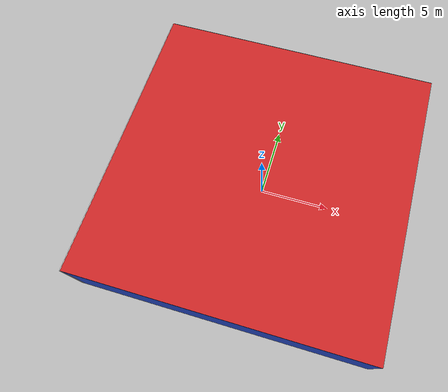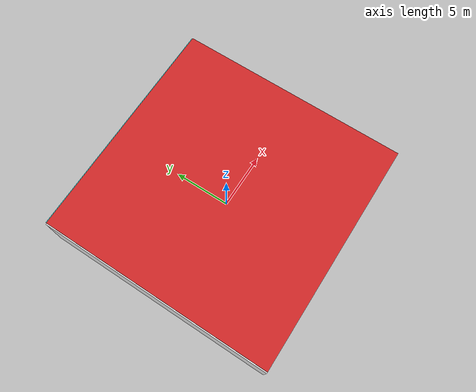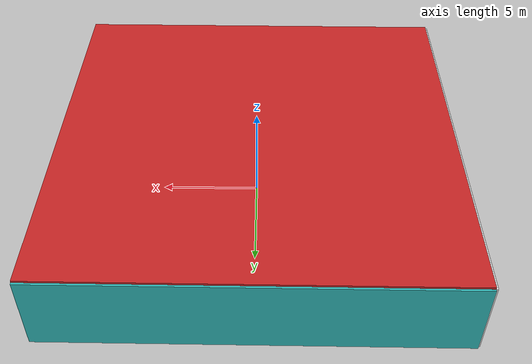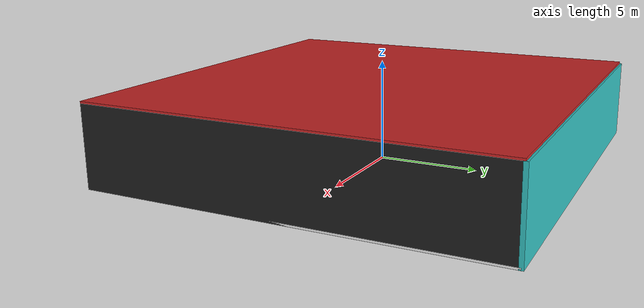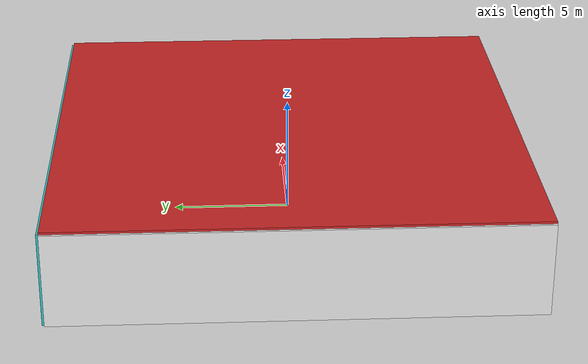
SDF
<sdf version="1.4">
 <world name="default">
  <physics type="ode">
   <max_step_size>0.001</max_step_size>
   <real_time_factor>1</real_time_factor>
   <real_time_update_rate>1000</real_time_update_rate>
   <gravity>0 0 -9.8</gravity>
  </physics>
  <scene><ambient>0.4 0.4 0.4 1</ambient><background>0.7 0.7 0.7 1</background><shadows>1</shadows></scene>
  <model name="Surrounding">
   <static>1</static>
   <link name="Ceiling">
    <collision name="Ceiling_Collision"><geometry><box><size>20 20 0.1</size></box></geometry></collision>
    <visual name="Ceiling_Visual">
     <geometry><box><size>20 20 0.1</size></box></geometry>
     <material>
      <script><uri>file://media/materials/scripts/gazebo.material</uri><name>Gazebo/RedGlow</name></script>
     </material>
    </visual>
    <pose>0 0 4.05 0 0 0</pose>
   </link>
   <link name="Wall_South">
    <collision name="Wall_South_Collision">
     <geometry><box><size>20 0 4</size></box></geometry>
     <pose>0 0 2 0 -0 0</pose>
    </collision>
    <visual name="Wall_South_Visual">
     <pose>0 0 2 0 -0 0</pose>
     <geometry><box><size>20 0 4</size></box></geometry>
     <material>
      <script><uri>file://media/materials/scripts/gazebo.material</uri><name>Gazebo/Blue</name></script>
     </material>
    </visual>
    <velocity_decay><linear>0</linear><angular>0</angular></velocity_decay>
    <pose>0 -10 0 0 -0 0</pose>
   </link>
   <link name="Wall_East">
    <collision name="Wall_21_Collision">
     <geometry><box><size>20 0 4</size></box></geometry>
     <pose>0 0 2 0 -0 0</pose>
    </collision>
    <visual name="Wall_21_Visual">
     <pose>0 0 2 0 -0 0</pose>
     <geometry><box><size>20 0 4</size></box></geometry>
     <material>
      <script><uri>file://media/materials/scripts/gazebo.material</uri><name>Gazebo/FlatBlack</name></script>
     </material>
    </visual>
    <velocity_decay><linear>0</linear><angular>0</angular></velocity_decay>
    <pose>10 0 0 0 -0 1.5708</pose>
   </link>
   <link name="Wall_North">
    <collision name="Wall_22_Collision">
     <geometry><box><size>20 0.2 4</size></box></geometry>
     <pose>0 0 2 0 -0 0</pose>
    </collision>
    <visual name="Wall_22_Visual">
     <pose>0 0 2 0 -0 0</pose>
     <geometry><box><size>20 0.2 4</size></box></geometry>
     <material>
      <script>
       <uri>file://media/materials/scripts/gazebo.material</uri>
       <name>Gazebo/TurquoiseGlowOutline</name>
      </script>
     </material>
    </visual>
    <velocity_decay><linear>0</linear><angular>0</angular></velocity_decay>
    <pose>0 10 0 0 -0 0</pose>
   </link>
   <link name="Wall_West">
    <collision name="Wall_23_Collision">
     <geometry><box><size>20 0.2 4</size></box></geometry>
     <pose>0 0 2 0 -0 0</pose>
    </collision>
    <visual name="Wall_23_Visual">
     <pose>0 0 2 0 -0 0</pose>
     <geometry><box><size>20 0.2 4</size></box></geometry>
     <material>
      <script><uri>file://media/materials/scripts/gazebo.material</uri><name>Gazebo/White</name></script>
     </material>
    </visual>
    <velocity_decay><linear>0</linear><angular>0</angular></velocity_decay>
    <pose>-10 0 0 0 0 -1.5708</pose>
   </link>
   <link name="Ground_link">
    <collision name="collision">
     <pose>0 0 .05 0 -0 0</pose>
     <geometry><box><size>20 20 0.1</size></box></geometry>
    </collision>
    <visual name="visual">
     <pose>0 0 .05 0 -0 0</pose>
     <geometry><box><size>20 20 0.1</size></box></geometry>
     <material>
      <script><uri>file://media/materials/scripts/gazebo.material</uri><name>Gazebo/White</name></script>
     </material>
    </visual>
   </link>
   <static>1</static>
  </model>
  <spherical_coordinates>
   <surface_model>EARTH_WGS84</surface_model>
   <latitude_deg>0</latitude_deg>
   <longitude_deg>0</longitude_deg>
   <elevation>0</elevation>
   <heading_deg>0</heading_deg>
  </spherical_coordinates>
  <light name="lightball_0" type="diffuse">
   <diffuse>0.8 0.8 0.8 1</diffuse>
   <specular>0.2 0.2 0.2 1</specular>
   <attenuation>
    <range>100</range>
    <constant>0.7</constant>
    <linear>0.01</linear>
    <quadratic>0.001</quadratic>
   </attenuation>
   <direction>-0.5 0.1 -0.9</direction>
   <pose>5.1468683548 9.35584634316 2.37061166328 0 0 0</pose>
  </light>
  <light name="lightball_1" type="diffuse">
   <diffuse>0.8 0.8 0.8 1</diffuse>
   <specular>0.2 0.2 0.2 1</specular>
   <attenuation>
    <range>100</range>
    <constant>0.7</constant>
    <linear>0.01</linear>
    <quadratic>0.001</quadratic>
   </attenuation>
   <direction>-0.5 0.1 -0.9</direction>
   <pose>5.82091603903 -4.47267984547 2.41115849062 0 0 0</pose>
  </light>
  <light name="lightball_2" type="diffuse">
   <diffuse>0.8 0.8 0.8 1</diffuse>
   <specular>0.2 0.2 0.2 1</specular>
   <attenuation>
    <range>100</range>
    <constant>0.7</constant>
    <linear>0.01</linear>
    <quadratic>0.001</quadratic>
   </attenuation>
   <direction>-0.5 0.1 -0.9</direction>
   <pose>1.48640027263 6.12233686169 2.26456767985 0 0 0</pose>
  </light>
  <light name="lightball_3" type="diffuse">
   <diffuse>0.8 0.8 0.8 1</diffuse>
   <specular>0.2 0.2 0.2 1</specular>
   <attenuation>
    <range>100</range>
    <constant>0.7</constant>
    <linear>0.01</linear>
    <quadratic>0.001</quadratic>
   </attenuation>
   <direction>-0.5 0.1 -0.9</direction>
   <pose>4.91992262851 -7.30494637902 2.63553896343 0 0 0</pose>
  </light>
  <light name="lightball_4" type="diffuse">
   <diffuse>0.8 0.8 0.8 1</diffuse>
   <specular>0.2 0.2 0.2 1</specular>
   <attenuation>
    <range>100</range>
    <constant>0.7</constant>
    <linear>0.01</linear>
    <quadratic>0.001</quadratic>
   </attenuation>
   <direction>-0.5 0.1 -0.9</direction>
   <pose>2.67320137204 -0.822824268402 2.06505304028 0 0 0</pose>
  </light>
  <light name="lightball_5" type="diffuse">
   <diffuse>0.8 0.8 0.8 1</diffuse>
   <specular>0.2 0.2 0.2 1</specular>
   <attenuation>
    <range>100</range>
    <constant>0.7</constant>
    <linear>0.01</linear>
    <quadratic>0.001</quadratic>
   </attenuation>
   <direction>-0.5 0.1 -0.9</direction>
   <pose>2.87053979219 -1.85624529405 3.31569823578 0 0 0</pose>
  </light>
  <light name="lightball_6" type="diffuse">
   <diffuse>0.8 0.8 0.8 1</diffuse>
   <specular>0.2 0.2 0.2 1</specular>
   <attenuation>
    <range>100</range>
    <constant>0.7</constant>
    <linear>0.01</linear>
    <quadratic>0.001</quadratic>
   </attenuation>
   <direction>-0.5 0.1 -0.9</direction>
   <pose>2.89593343042 8.85878605166 0.621306064024 0 0 0</pose>
  </light>
  <light name="lightball_7" type="diffuse">
   <diffuse>0.8 0.8 0.8 1</diffuse>
   <specular>0.2 0.2 0.2 1</specular>
   <attenuation>
    <range>100</range>
    <constant>0.7</constant>
    <linear>0.01</linear>
    <quadratic>0.001</quadratic>
   </attenuation>
   <direction>-0.5 0.1 -0.9</direction>
   <pose>-6.72962792223 2.08203354649 2.64055672581 0 0 0</pose>
  </light>
  <light name="lightball_8" type="diffuse">
   <diffuse>0.8 0.8 0.8 1</diffuse>
   <specular>0.2 0.2 0.2 1</specular>
   <attenuation>
    <range>100</range>
    <constant>0.7</constant>
    <linear>0.01</linear>
    <quadratic>0.001</quadratic>
   </attenuation>
   <direction>-0.5 0.1 -0.9</direction>
   <pose>6.76347229475 -3.86063458649 2.41252119459 0 0 0</pose>
  </light>
  <light name="lightball_9" type="diffuse">
   <diffuse>0.8 0.8 0.8 1</diffuse>
   <specular>0.2 0.2 0.2 1</specular>
   <attenuation>
    <range>100</range>
    <constant>0.7</constant>
    <linear>0.01</linear>
    <quadratic>0.001</quadratic>
   </attenuation>
   <direction>-0.5 0.1 -0.9</direction>
   <pose>-8.38292174293 -5.30413233965 2.77494357377 0 0 0</pose>
  </light>
  <light name="lightball_10" type="diffuse">
   <diffuse>0.8 0.8 0.8 1</diffuse>
   <specular>0.2 0.2 0.2 1</specular>
   <attenuation>
    <range>100</range>
    <constant>0.7</constant>
    <linear>0.01</linear>
    <quadratic>0.001</quadratic>
   </attenuation>
   <direction>-0.5 0.1 -0.9</direction>
   <pose>-9.29774390028 9.57017286251 3.55480045484 0 0 0</pose>
  </light>
  <light name="lightball_11" type="diffuse">
   <diffuse>0.8 0.8 0.8 1</diffuse>
   <specular>0.2 0.2 0.2 1</specular>
   <attenuation>
    <range>100</range>
    <constant>0.7</constant>
    <linear>0.01</linear>
    <quadratic>0.001</quadratic>
   </attenuation>
   <direction>-0.5 0.1 -0.9</direction>
   <pose>-7.13420375948 -3.31301407901 1.66811466723 0 0 0</pose>
  </light>
  <include>
   <uri>model://textured_shapes</uri>
   <pose>-6.52844626857 4.62432465736 0 0 0 2.50049556733</pose>
  </include>
  <include><uri>model://cabinet</uri><pose>1.84209486386 -7.84933491467 0 0 0 0.120973389298</pose></include>
  <include><uri>model://cabinet</uri><pose>2.18168399616 -2.41614898724 0 0 0 0.663758695971</pose></include>
  <include>
   <uri>model://construction_cone</uri>
   <pose>0.383689824633 4.97216955583 0 0 0 2.296514852</pose>
  </include>
 </world>
</sdf>

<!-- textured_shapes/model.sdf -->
<sdf version="1.6">
  <model name="textured_shapes">
    <pose>0 0 0.5 0 0 0</pose>
    <link name="box">
      <pose>0 -1.5 0 0 0 0</pose>
      <collision name="collision">
        <geometry>
          <box>
            <size>1 1 1</size>
          </box>
        </geometry>
      </collision>
      <visual name="visual">
        <geometry>
          <box>
            <size>1 1 1</size>
          </box>
        </geometry>
        <material>
          <script>
            <uri>model://../model_source/models/textured_shapes/materials/scripts</uri>
            <uri>model://../model_source/models/textured_shapes/materials/textures</uri>
            <name>TexturedShape/Squares</name>
          </script>
        </material>
      </visual>
    </link>
    <link name="sphere">
      <collision name="collision">
        <geometry>
          <sphere>
            <radius>0.5</radius>
          </sphere>
        </geometry>
      </collision>
      <visual name="visual">
        <geometry>
          <sphere>
            <radius>0.5</radius>
          </sphere>
        </geometry>
        <material>
          <script>
            <uri>model://../model_source/models/textured_shapes/materials/scripts</uri>
            <uri>model://../model_source/models/textured_shapes/materials/textures</uri>
            <name>TexturedShape/Squares</name>
          </script>
        </material>
      </visual>
    </link>
    <link name="cylinder">
      <pose>0 1.5 0 0 0 0</pose>
      <collision name="collision">
        <geometry>
          <cylinder>
            <radius>0.5</radius>
            <length>1</length>
          </cylinder>
        </geometry>
      </collision>
      <visual name="visual">
        <geometry>
          <cylinder>
            <radius>0.5</radius>
            <length>1</length>
          </cylinder>
        </geometry>
        <material>
          <script>
            <uri>model://../model_source/models/textured_shapes/materials/scripts</uri>
            <uri>model://../model_source/models/textured_shapes/materials/textures</uri>
            <name>TexturedShape/Squares</name>
          </script>
        </material>
      </visual>
    </link>
  </model>
</sdf>

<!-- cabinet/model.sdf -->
<sdf version="1.5">
  <model name="cabinet">
    <static>true</static>
    <link name="cabinet_bottom_plate">
      <inertial>
        <pose>0 0 -1 0 0 0</pose>
        <inertia>
          <ixx>2.050000</ixx>
          <ixy>0</ixy>
          <ixz>0</ixz>
          <iyy>2.050000</iyy>
          <iyz>0</iyz>
          <izz>2.050000</izz>
        </inertia>
        <mass>25.000000</mass>
      </inertial>
      <collision name="cabinet_bottom_plate_geom">
        <pose>0 0 0.010000 0 0 0</pose>
        <geometry>
          <box>
            <size>0.450000 0.450000 0.020000</size>
          </box>
        </geometry>
      </collision>
      <visual name="cabinet_bottom_plate_geom_visual">
        <pose>0 0 0.010000 0 0 0</pose>
        <geometry>
          <box>
            <size>0.450000 0.450000 0.020000</size>
          </box>
        </geometry>
        <material>
          <script>
            <uri>model://media/materials/scripts/gazebo.material</uri>
            <name>Gazebo/Wood</name>
          </script>
        </material>
      </visual>
      <collision name="cabinet_bottom_plate_geom_cabinet_back_plate">
        <pose>0.235000 0 0.510000 0 0 0</pose>
        <geometry>
          <box>
            <size>0.020000 0.450000 1.020000</size>
          </box>
        </geometry>
      </collision>
      <visual name="cabinet_bottom_plate_geom_cabinet_back_plate_visual">
        <pose>0.235000 0 0.510000 0 0 0</pose>
        <geometry>
          <box>
            <size>0.020000 0.450000 1.020000</size>
          </box>
        </geometry>
        <material>
          <script>
            <uri>model://media/materials/scripts/gazebo.material</uri>
            <name>Gazebo/Wood</name>
          </script>
        </material>
      </visual>
      <collision name="cabinet_bottom_plate_geom_cabinet_left_plate">
        <pose>0 0.235000 0.510000 0 0 0</pose>
        <geometry>
          <box>
            <size>0.450000 0.020000 1.020000</size>
          </box>
        </geometry>
      </collision>
      <visual name="cabinet_bottom_plate_geom_cabinet_left_plate_visual">
        <pose>0 0.235000 0.510000 0 0 0</pose>
        <geometry>
          <box>
            <size>0.450000 0.020000 1.020000</size>
          </box>
        </geometry>
        <material>
          <script>
            <uri>model://media/materials/scripts/gazebo.material</uri>
            <name>Gazebo/Wood</name>
          </script>
        </material>
      </visual>
      <collision name="cabinet_bottom_plate_geom_cabinet_middle_plate">
        <pose>0 0 0.510000 0 0 0</pose>
        <geometry>
          <box>
            <size>0.450000 0.450000 0.020000</size>
          </box>
        </geometry>
      </collision>
      <visual name="cabinet_bottom_plate_geom_cabinet_middle_plate_visual">
        <pose>0 0 0.510000 0 0 0</pose>
        <geometry>
          <box>
            <size>0.450000 0.450000 0.020000</size>
          </box>
        </geometry>
        <material>
          <script>
            <uri>model://media/materials/scripts/gazebo.material</uri>
            <name>Gazebo/Wood</name>
          </script>
        </material>
      </visual>
      <collision name="cabinet_bottom_plate_geom_cabinet_right_plate">
        <pose>0 -0.235000 0.510000 0 0 0</pose>
        <geometry>
          <box>
            <size>0.450000 0.020000 1.020000</size>
          </box>
        </geometry>
      </collision>
      <visual name="cabinet_bottom_plate_geom_cabinet_right_plate_visual">
        <pose>0 -0.235000 0.510000 0 0 0</pose>
        <geometry>
          <box>
            <size>0.450000 0.020000 1.020000</size>
          </box>
        </geometry>
        <material>
          <script>
            <uri>model://media/materials/scripts/gazebo.material</uri>
            <name>Gazebo/Wood</name>
          </script>
        </material>
      </visual>
      <collision name="cabinet_bottom_plate_geom_cabinet_top_plate">
        <pose>0 0 1.010000 0 0 0</pose>
        <geometry>
          <box>
            <size>0.450000 0.450000 0.020000</size>
          </box>
        </geometry>
      </collision>
      <visual name="cabinet_bottom_plate_geom_cabinet_top_plate_visual">
        <pose>0 0 1.010000 0 0 0</pose>
        <geometry>
          <box>
            <size>0.450000 0.450000 0.020000</size>
          </box>
        </geometry>
        <material>
          <script>
            <uri>model://media/materials/scripts/gazebo.material</uri>
            <name>Gazebo/Wood</name>
          </script>
        </material>
      </visual>
    </link>
  </model>
</sdf>

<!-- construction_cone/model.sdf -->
<sdf version="1.5">
  <model name="Construction Cone">
    <link name="link">
      <collision name="collision">
        <geometry>
          <mesh>
            <scale>10 10 10</scale>
            <uri>file://isr-testbed/construction_cone/meshes/construction_cone.dae</uri>
          </mesh>
        </geometry>
      </collision>
      <visual name="visual">
        <geometry>
          <mesh>
            <scale>10 10 10</scale>
            <uri>file://isr-testbed/construction_cone/meshes/construction_cone.dae</uri>
          </mesh>
        </geometry>
      </visual>
    </link>
  </model>
</sdf>
